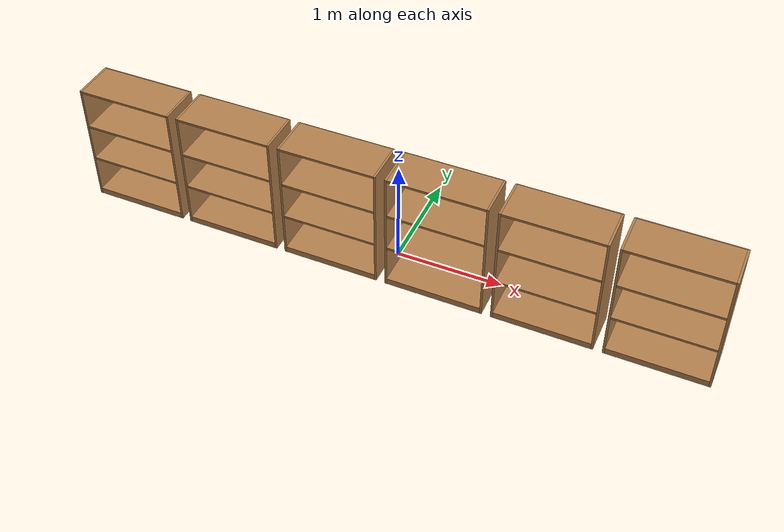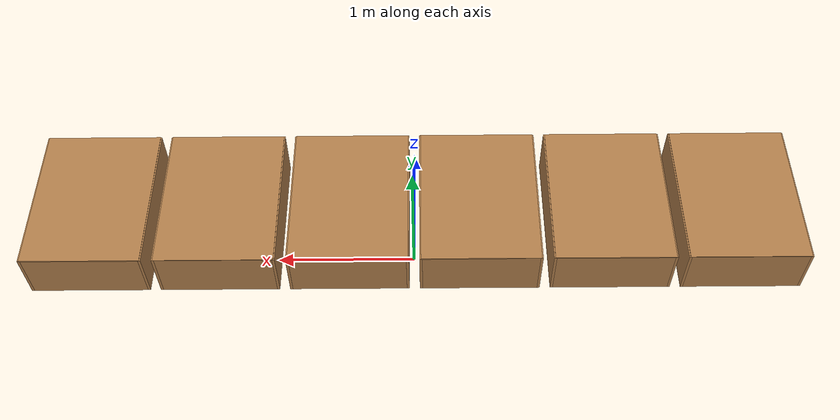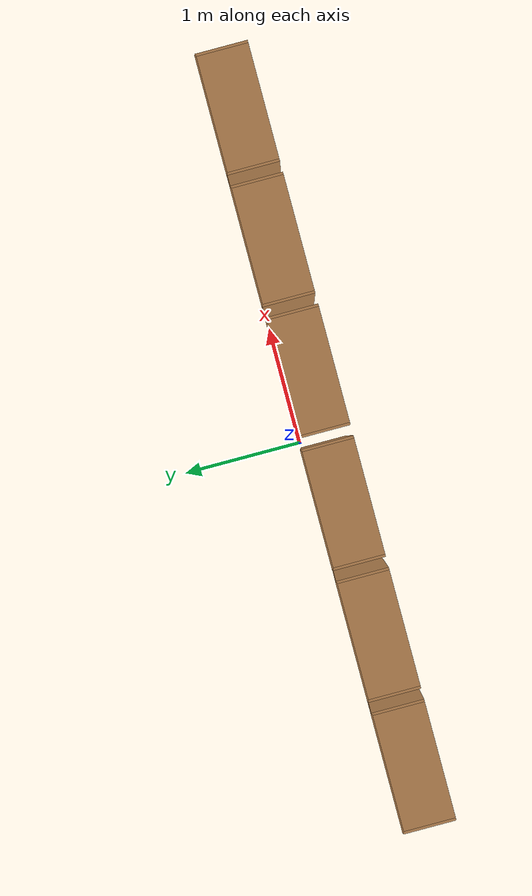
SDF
<?xml version='1.0'?>
<sdf version='1.6'>
  <model name='BookshelfRow'>
    <model name='bookshelf'>
      <static>1</static>
      <link name='link'>
        <inertial>
          <mass>1</mass>
        </inertial>
        <collision name='back'>
          <pose frame=''>0 0.005 0.6 0 -0 0</pose>
          <geometry>
            <box>
              <size>0.9 0.01 1.2</size>
            </box>
          </geometry>
        </collision>
        <visual name='visual1'>
          <pose frame=''>0 0.005 0.6 0 -0 0</pose>
          <geometry>
            <box>
              <size>0.9 0.01 1.2</size>
            </box>
          </geometry>
          <material>
            <script>
              <uri>file://media/materials/scripts/gazebo.material</uri>
              <name>Gazebo/Wood</name>
            </script>
          </material>
        </visual>
        <collision name='left_side'>
          <pose frame=''>0.45 -0.195 0.6 0 -0 0</pose>
          <geometry>
            <box>
              <size>0.02 0.4 1.2</size>
            </box>
          </geometry>
        </collision>
        <visual name='visual2'>
          <pose frame=''>0.45 -0.195 0.6 0 -0 0</pose>
          <geometry>
            <box>
              <size>0.02 0.4 1.2</size>
            </box>
          </geometry>
          <material>
            <script>
              <uri>file://media/materials/scripts/gazebo.material</uri>
              <name>Gazebo/Wood</name>
            </script>
          </material>
        </visual>
        <collision name='right_side'>
          <pose frame=''>-0.45 -0.195 0.6 0 -0 0</pose>
          <geometry>
            <box>
              <size>0.02 0.4 1.2</size>
            </box>
          </geometry>
        </collision>
        <visual name='visual3'>
          <pose frame=''>-0.45 -0.195 0.6 0 -0 0</pose>
          <geometry>
            <box>
              <size>0.02 0.4 1.2</size>
            </box>
          </geometry>
          <material>
            <script>
              <uri>file://media/materials/scripts/gazebo.material</uri>
              <name>Gazebo/Wood</name>
            </script>
          </material>
        </visual>
        <collision name='bottom'>
          <pose frame=''>0 -0.195 0.03 0 -0 0</pose>
          <geometry>
            <box>
              <size>0.88 0.4 0.06</size>
            </box>
          </geometry>
        </collision>
        <visual name='visual4'>
          <pose frame=''>0 -0.195 0.03 0 -0 0</pose>
          <geometry>
            <box>
              <size>0.88 0.4 0.06</size>
            </box>
          </geometry>
          <material>
            <script>
              <uri>file://media/materials/scripts/gazebo.material</uri>
              <name>Gazebo/Wood</name>
            </script>
          </material>
        </visual>
        <collision name='top'>
          <pose frame=''>0 -0.195 1.19 0 -0 0</pose>
          <geometry>
            <box>
              <size>0.88 0.4 0.02</size>
            </box>
          </geometry>
        </collision>
        <visual name='visual5'>
          <pose frame=''>0 -0.195 1.19 0 -0 0</pose>
          <geometry>
            <box>
              <size>0.88 0.4 0.02</size>
            </box>
          </geometry>
          <material>
            <script>
              <uri>file://media/materials/scripts/gazebo.material</uri>
              <name>Gazebo/Wood</name>
            </script>
          </material>
        </visual>
        <collision name='low_shelf'>
          <pose frame=''>0 -0.195 0.43 0 -0 0</pose>
          <geometry>
            <box>
              <size>0.88 0.4 0.02</size>
            </box>
          </geometry>
        </collision>
        <visual name='visual6'>
          <pose frame=''>0 -0.195 0.43 0 -0 0</pose>
          <geometry>
            <box>
              <size>0.88 0.4 0.02</size>
            </box>
          </geometry>
          <material>
            <script>
              <uri>file://media/materials/scripts/gazebo.material</uri>
              <name>Gazebo/Wood</name>
            </script>
          </material>
        </visual>
        <collision name='high_shelf'>
          <pose frame=''>0 -0.195 0.8 0 -0 0</pose>
          <geometry>
            <box>
              <size>0.88 0.4 0.02</size>
            </box>
          </geometry>
        </collision>
        <visual name='visual7'>
          <pose frame=''>0 -0.195 0.8 0 -0 0</pose>
          <geometry>
            <box>
              <size>0.88 0.4 0.02</size>
            </box>
          </geometry>
          <material>
            <script>
              <uri>file://media/materials/scripts/gazebo.material</uri>
              <name>Gazebo/Wood</name>
            </script>
          </material>
        </visual>
      </link>
      <pose frame=''>-2.5 0 0 0 -0 0</pose>
    </model>
    <model name='bookshelf_0'>
      <static>1</static>
      <link name='link'>
        <inertial>
          <mass>1</mass>
        </inertial>
        <collision name='back'>
          <pose frame=''>0 0.005 0.6 0 -0 0</pose>
          <geometry>
            <box>
              <size>0.9 0.01 1.2</size>
            </box>
          </geometry>
        </collision>
        <visual name='visual1'>
          <pose frame=''>0 0.005 0.6 0 -0 0</pose>
          <geometry>
            <box>
              <size>0.9 0.01 1.2</size>
            </box>
          </geometry>
          <material>
            <script>
              <uri>file://media/materials/scripts/gazebo.material</uri>
              <name>Gazebo/Wood</name>
            </script>
          </material>
        </visual>
        <collision name='left_side'>
          <pose frame=''>0.45 -0.195 0.6 0 -0 0</pose>
          <geometry>
            <box>
              <size>0.02 0.4 1.2</size>
            </box>
          </geometry>
        </collision>
        <visual name='visual2'>
          <pose frame=''>0.45 -0.195 0.6 0 -0 0</pose>
          <geometry>
            <box>
              <size>0.02 0.4 1.2</size>
            </box>
          </geometry>
          <material>
            <script>
              <uri>file://media/materials/scripts/gazebo.material</uri>
              <name>Gazebo/Wood</name>
            </script>
          </material>
        </visual>
        <collision name='right_side'>
          <pose frame=''>-0.45 -0.195 0.6 0 -0 0</pose>
          <geometry>
            <box>
              <size>0.02 0.4 1.2</size>
            </box>
          </geometry>
        </collision>
        <visual name='visual3'>
          <pose frame=''>-0.45 -0.195 0.6 0 -0 0</pose>
          <geometry>
            <box>
              <size>0.02 0.4 1.2</size>
            </box>
          </geometry>
          <material>
            <script>
              <uri>file://media/materials/scripts/gazebo.material</uri>
              <name>Gazebo/Wood</name>
            </script>
          </material>
        </visual>
        <collision name='bottom'>
          <pose frame=''>0 -0.195 0.03 0 -0 0</pose>
          <geometry>
            <box>
              <size>0.88 0.4 0.06</size>
            </box>
          </geometry>
        </collision>
        <visual name='visual4'>
          <pose frame=''>0 -0.195 0.03 0 -0 0</pose>
          <geometry>
            <box>
              <size>0.88 0.4 0.06</size>
            </box>
          </geometry>
          <material>
            <script>
              <uri>file://media/materials/scripts/gazebo.material</uri>
              <name>Gazebo/Wood</name>
            </script>
          </material>
        </visual>
        <collision name='top'>
          <pose frame=''>0 -0.195 1.19 0 -0 0</pose>
          <geometry>
            <box>
              <size>0.88 0.4 0.02</size>
            </box>
          </geometry>
        </collision>
        <visual name='visual5'>
          <pose frame=''>0 -0.195 1.19 0 -0 0</pose>
          <geometry>
            <box>
              <size>0.88 0.4 0.02</size>
            </box>
          </geometry>
          <material>
            <script>
              <uri>file://media/materials/scripts/gazebo.material</uri>
              <name>Gazebo/Wood</name>
            </script>
          </material>
        </visual>
        <collision name='low_shelf'>
          <pose frame=''>0 -0.195 0.43 0 -0 0</pose>
          <geometry>
            <box>
              <size>0.88 0.4 0.02</size>
            </box>
          </geometry>
        </collision>
        <visual name='visual6'>
          <pose frame=''>0 -0.195 0.43 0 -0 0</pose>
          <geometry>
            <box>
              <size>0.88 0.4 0.02</size>
            </box>
          </geometry>
          <material>
            <script>
              <uri>file://media/materials/scripts/gazebo.material</uri>
              <name>Gazebo/Wood</name>
            </script>
          </material>
        </visual>
        <collision name='high_shelf'>
          <pose frame=''>0 -0.195 0.8 0 -0 0</pose>
          <geometry>
            <box>
              <size>0.88 0.4 0.02</size>
            </box>
          </geometry>
        </collision>
        <visual name='visual7'>
          <pose frame=''>0 -0.195 0.8 0 -0 0</pose>
          <geometry>
            <box>
              <size>0.88 0.4 0.02</size>
            </box>
          </geometry>
          <material>
            <script>
              <uri>file://media/materials/scripts/gazebo.material</uri>
              <name>Gazebo/Wood</name>
            </script>
          </material>
        </visual>
      </link>
      <pose frame=''>-1.5 0 0 0 -0 0</pose>
    </model>
    <model name='bookshelf_1'>
      <static>1</static>
      <link name='link'>
        <inertial>
          <mass>1</mass>
        </inertial>
        <collision name='back'>
          <pose frame=''>0 0.005 0.6 0 -0 0</pose>
          <geometry>
            <box>
              <size>0.9 0.01 1.2</size>
            </box>
          </geometry>
        </collision>
        <visual name='visual1'>
          <pose frame=''>0 0.005 0.6 0 -0 0</pose>
          <geometry>
            <box>
              <size>0.9 0.01 1.2</size>
            </box>
          </geometry>
          <material>
            <script>
              <uri>file://media/materials/scripts/gazebo.material</uri>
              <name>Gazebo/Wood</name>
            </script>
          </material>
        </visual>
        <collision name='left_side'>
          <pose frame=''>0.45 -0.195 0.6 0 -0 0</pose>
          <geometry>
            <box>
              <size>0.02 0.4 1.2</size>
            </box>
          </geometry>
        </collision>
        <visual name='visual2'>
          <pose frame=''>0.45 -0.195 0.6 0 -0 0</pose>
          <geometry>
            <box>
              <size>0.02 0.4 1.2</size>
            </box>
          </geometry>
          <material>
            <script>
              <uri>file://media/materials/scripts/gazebo.material</uri>
              <name>Gazebo/Wood</name>
            </script>
          </material>
        </visual>
        <collision name='right_side'>
          <pose frame=''>-0.45 -0.195 0.6 0 -0 0</pose>
          <geometry>
            <box>
              <size>0.02 0.4 1.2</size>
            </box>
          </geometry>
        </collision>
        <visual name='visual3'>
          <pose frame=''>-0.45 -0.195 0.6 0 -0 0</pose>
          <geometry>
            <box>
              <size>0.02 0.4 1.2</size>
            </box>
          </geometry>
          <material>
            <script>
              <uri>file://media/materials/scripts/gazebo.material</uri>
              <name>Gazebo/Wood</name>
            </script>
          </material>
        </visual>
        <collision name='bottom'>
          <pose frame=''>0 -0.195 0.03 0 -0 0</pose>
          <geometry>
            <box>
              <size>0.88 0.4 0.06</size>
            </box>
          </geometry>
        </collision>
        <visual name='visual4'>
          <pose frame=''>0 -0.195 0.03 0 -0 0</pose>
          <geometry>
            <box>
              <size>0.88 0.4 0.06</size>
            </box>
          </geometry>
          <material>
            <script>
              <uri>file://media/materials/scripts/gazebo.material</uri>
              <name>Gazebo/Wood</name>
            </script>
          </material>
        </visual>
        <collision name='top'>
          <pose frame=''>0 -0.195 1.19 0 -0 0</pose>
          <geometry>
            <box>
              <size>0.88 0.4 0.02</size>
            </box>
          </geometry>
        </collision>
        <visual name='visual5'>
          <pose frame=''>0 -0.195 1.19 0 -0 0</pose>
          <geometry>
            <box>
              <size>0.88 0.4 0.02</size>
            </box>
          </geometry>
          <material>
            <script>
              <uri>file://media/materials/scripts/gazebo.material</uri>
              <name>Gazebo/Wood</name>
            </script>
          </material>
        </visual>
        <collision name='low_shelf'>
          <pose frame=''>0 -0.195 0.43 0 -0 0</pose>
          <geometry>
            <box>
              <size>0.88 0.4 0.02</size>
            </box>
          </geometry>
        </collision>
        <visual name='visual6'>
          <pose frame=''>0 -0.195 0.43 0 -0 0</pose>
          <geometry>
            <box>
              <size>0.88 0.4 0.02</size>
            </box>
          </geometry>
          <material>
            <script>
              <uri>file://media/materials/scripts/gazebo.material</uri>
              <name>Gazebo/Wood</name>
            </script>
          </material>
        </visual>
        <collision name='high_shelf'>
          <pose frame=''>0 -0.195 0.8 0 -0 0</pose>
          <geometry>
            <box>
              <size>0.88 0.4 0.02</size>
            </box>
          </geometry>
        </collision>
        <visual name='visual7'>
          <pose frame=''>0 -0.195 0.8 0 -0 0</pose>
          <geometry>
            <box>
              <size>0.88 0.4 0.02</size>
            </box>
          </geometry>
          <material>
            <script>
              <uri>file://media/materials/scripts/gazebo.material</uri>
              <name>Gazebo/Wood</name>
            </script>
          </material>
        </visual>
      </link>
      <pose frame=''>-0.5 0 0 0 -0 0</pose>
    </model>
    <model name='bookshelf_2'>
      <static>1</static>
      <link name='link'>
        <inertial>
          <mass>1</mass>
        </inertial>
        <collision name='back'>
          <pose frame=''>0 0.005 0.6 0 -0 0</pose>
          <geometry>
            <box>
              <size>0.9 0.01 1.2</size>
            </box>
          </geometry>
        </collision>
        <visual name='visual1'>
          <pose frame=''>0 0.005 0.6 0 -0 0</pose>
          <geometry>
            <box>
              <size>0.9 0.01 1.2</size>
            </box>
          </geometry>
          <material>
            <script>
              <uri>file://media/materials/scripts/gazebo.material</uri>
              <name>Gazebo/Wood</name>
            </script>
          </material>
        </visual>
        <collision name='left_side'>
          <pose frame=''>0.45 -0.195 0.6 0 -0 0</pose>
          <geometry>
            <box>
              <size>0.02 0.4 1.2</size>
            </box>
          </geometry>
        </collision>
        <visual name='visual2'>
          <pose frame=''>0.45 -0.195 0.6 0 -0 0</pose>
          <geometry>
            <box>
              <size>0.02 0.4 1.2</size>
            </box>
          </geometry>
          <material>
            <script>
              <uri>file://media/materials/scripts/gazebo.material</uri>
              <name>Gazebo/Wood</name>
            </script>
          </material>
        </visual>
        <collision name='right_side'>
          <pose frame=''>-0.45 -0.195 0.6 0 -0 0</pose>
          <geometry>
            <box>
              <size>0.02 0.4 1.2</size>
            </box>
          </geometry>
        </collision>
        <visual name='visual3'>
          <pose frame=''>-0.45 -0.195 0.6 0 -0 0</pose>
          <geometry>
            <box>
              <size>0.02 0.4 1.2</size>
            </box>
          </geometry>
          <material>
            <script>
              <uri>file://media/materials/scripts/gazebo.material</uri>
              <name>Gazebo/Wood</name>
            </script>
          </material>
        </visual>
        <collision name='bottom'>
          <pose frame=''>0 -0.195 0.03 0 -0 0</pose>
          <geometry>
            <box>
              <size>0.88 0.4 0.06</size>
            </box>
          </geometry>
        </collision>
        <visual name='visual4'>
          <pose frame=''>0 -0.195 0.03 0 -0 0</pose>
          <geometry>
            <box>
              <size>0.88 0.4 0.06</size>
            </box>
          </geometry>
          <material>
            <script>
              <uri>file://media/materials/scripts/gazebo.material</uri>
              <name>Gazebo/Wood</name>
            </script>
          </material>
        </visual>
        <collision name='top'>
          <pose frame=''>0 -0.195 1.19 0 -0 0</pose>
          <geometry>
            <box>
              <size>0.88 0.4 0.02</size>
            </box>
          </geometry>
        </collision>
        <visual name='visual5'>
          <pose frame=''>0 -0.195 1.19 0 -0 0</pose>
          <geometry>
            <box>
              <size>0.88 0.4 0.02</size>
            </box>
          </geometry>
          <material>
            <script>
              <uri>file://media/materials/scripts/gazebo.material</uri>
              <name>Gazebo/Wood</name>
            </script>
          </material>
        </visual>
        <collision name='low_shelf'>
          <pose frame=''>0 -0.195 0.43 0 -0 0</pose>
          <geometry>
            <box>
              <size>0.88 0.4 0.02</size>
            </box>
          </geometry>
        </collision>
        <visual name='visual6'>
          <pose frame=''>0 -0.195 0.43 0 -0 0</pose>
          <geometry>
            <box>
              <size>0.88 0.4 0.02</size>
            </box>
          </geometry>
          <material>
            <script>
              <uri>file://media/materials/scripts/gazebo.material</uri>
              <name>Gazebo/Wood</name>
            </script>
          </material>
        </visual>
        <collision name='high_shelf'>
          <pose frame=''>0 -0.195 0.8 0 -0 0</pose>
          <geometry>
            <box>
              <size>0.88 0.4 0.02</size>
            </box>
          </geometry>
        </collision>
        <visual name='visual7'>
          <pose frame=''>0 -0.195 0.8 0 -0 0</pose>
          <geometry>
            <box>
              <size>0.88 0.4 0.02</size>
            </box>
          </geometry>
          <material>
            <script>
              <uri>file://media/materials/scripts/gazebo.material</uri>
              <name>Gazebo/Wood</name>
            </script>
          </material>
        </visual>
      </link>
      <pose frame=''>0.5 0 0 0 -0 0</pose>
    </model>
    <model name='bookshelf_3'>
      <static>1</static>
      <link name='link'>
        <inertial>
          <mass>1</mass>
        </inertial>
        <collision name='back'>
          <pose frame=''>0 0.005 0.6 0 -0 0</pose>
          <geometry>
            <box>
              <size>0.9 0.01 1.2</size>
            </box>
          </geometry>
        </collision>
        <visual name='visual1'>
          <pose frame=''>0 0.005 0.6 0 -0 0</pose>
          <geometry>
            <box>
              <size>0.9 0.01 1.2</size>
            </box>
          </geometry>
          <material>
            <script>
              <uri>file://media/materials/scripts/gazebo.material</uri>
              <name>Gazebo/Wood</name>
            </script>
          </material>
        </visual>
        <collision name='left_side'>
          <pose frame=''>0.45 -0.195 0.6 0 -0 0</pose>
          <geometry>
            <box>
              <size>0.02 0.4 1.2</size>
            </box>
          </geometry>
        </collision>
        <visual name='visual2'>
          <pose frame=''>0.45 -0.195 0.6 0 -0 0</pose>
          <geometry>
            <box>
              <size>0.02 0.4 1.2</size>
            </box>
          </geometry>
          <material>
            <script>
              <uri>file://media/materials/scripts/gazebo.material</uri>
              <name>Gazebo/Wood</name>
            </script>
          </material>
        </visual>
        <collision name='right_side'>
          <pose frame=''>-0.45 -0.195 0.6 0 -0 0</pose>
          <geometry>
            <box>
              <size>0.02 0.4 1.2</size>
            </box>
          </geometry>
        </collision>
        <visual name='visual3'>
          <pose frame=''>-0.45 -0.195 0.6 0 -0 0</pose>
          <geometry>
            <box>
              <size>0.02 0.4 1.2</size>
            </box>
          </geometry>
          <material>
            <script>
              <uri>file://media/materials/scripts/gazebo.material</uri>
              <name>Gazebo/Wood</name>
            </script>
          </material>
        </visual>
        <collision name='bottom'>
          <pose frame=''>0 -0.195 0.03 0 -0 0</pose>
          <geometry>
            <box>
              <size>0.88 0.4 0.06</size>
            </box>
          </geometry>
        </collision>
        <visual name='visual4'>
          <pose frame=''>0 -0.195 0.03 0 -0 0</pose>
          <geometry>
            <box>
              <size>0.88 0.4 0.06</size>
            </box>
          </geometry>
          <material>
            <script>
              <uri>file://media/materials/scripts/gazebo.material</uri>
              <name>Gazebo/Wood</name>
            </script>
          </material>
        </visual>
        <collision name='top'>
          <pose frame=''>0 -0.195 1.19 0 -0 0</pose>
          <geometry>
            <box>
              <size>0.88 0.4 0.02</size>
            </box>
          </geometry>
        </collision>
        <visual name='visual5'>
          <pose frame=''>0 -0.195 1.19 0 -0 0</pose>
          <geometry>
            <box>
              <size>0.88 0.4 0.02</size>
            </box>
          </geometry>
          <material>
            <script>
              <uri>file://media/materials/scripts/gazebo.material</uri>
              <name>Gazebo/Wood</name>
            </script>
          </material>
        </visual>
        <collision name='low_shelf'>
          <pose frame=''>0 -0.195 0.43 0 -0 0</pose>
          <geometry>
            <box>
              <size>0.88 0.4 0.02</size>
            </box>
          </geometry>
        </collision>
        <visual name='visual6'>
          <pose frame=''>0 -0.195 0.43 0 -0 0</pose>
          <geometry>
            <box>
              <size>0.88 0.4 0.02</size>
            </box>
          </geometry>
          <material>
            <script>
              <uri>file://media/materials/scripts/gazebo.material</uri>
              <name>Gazebo/Wood</name>
            </script>
          </material>
        </visual>
        <collision name='high_shelf'>
          <pose frame=''>0 -0.195 0.8 0 -0 0</pose>
          <geometry>
            <box>
              <size>0.88 0.4 0.02</size>
            </box>
          </geometry>
        </collision>
        <visual name='visual7'>
          <pose frame=''>0 -0.195 0.8 0 -0 0</pose>
          <geometry>
            <box>
              <size>0.88 0.4 0.02</size>
            </box>
          </geometry>
          <material>
            <script>
              <uri>file://media/materials/scripts/gazebo.material</uri>
              <name>Gazebo/Wood</name>
            </script>
          </material>
        </visual>
      </link>
      <pose frame=''>1.5 0 0 0 -0 0</pose>
    </model>
    <model name='bookshelf_4'>
      <static>1</static>
      <link name='link'>
        <inertial>
          <mass>1</mass>
        </inertial>
        <collision name='back'>
          <pose frame=''>0 0.005 0.6 0 -0 0</pose>
          <geometry>
            <box>
              <size>0.9 0.01 1.2</size>
            </box>
          </geometry>
        </collision>
        <visual name='visual1'>
          <pose frame=''>0 0.005 0.6 0 -0 0</pose>
          <geometry>
            <box>
              <size>0.9 0.01 1.2</size>
            </box>
          </geometry>
          <material>
            <script>
              <uri>file://media/materials/scripts/gazebo.material</uri>
              <name>Gazebo/Wood</name>
            </script>
          </material>
        </visual>
        <collision name='left_side'>
          <pose frame=''>0.45 -0.195 0.6 0 -0 0</pose>
          <geometry>
            <box>
              <size>0.02 0.4 1.2</size>
            </box>
          </geometry>
        </collision>
        <visual name='visual2'>
          <pose frame=''>0.45 -0.195 0.6 0 -0 0</pose>
          <geometry>
            <box>
              <size>0.02 0.4 1.2</size>
            </box>
          </geometry>
          <material>
            <script>
              <uri>file://media/materials/scripts/gazebo.material</uri>
              <name>Gazebo/Wood</name>
            </script>
          </material>
        </visual>
        <collision name='right_side'>
          <pose frame=''>-0.45 -0.195 0.6 0 -0 0</pose>
          <geometry>
            <box>
              <size>0.02 0.4 1.2</size>
            </box>
          </geometry>
        </collision>
        <visual name='visual3'>
          <pose frame=''>-0.45 -0.195 0.6 0 -0 0</pose>
          <geometry>
            <box>
              <size>0.02 0.4 1.2</size>
            </box>
          </geometry>
          <material>
            <script>
              <uri>file://media/materials/scripts/gazebo.material</uri>
              <name>Gazebo/Wood</name>
            </script>
          </material>
        </visual>
        <collision name='bottom'>
          <pose frame=''>0 -0.195 0.03 0 -0 0</pose>
          <geometry>
            <box>
              <size>0.88 0.4 0.06</size>
            </box>
          </geometry>
        </collision>
        <visual name='visual4'>
          <pose frame=''>0 -0.195 0.03 0 -0 0</pose>
          <geometry>
            <box>
              <size>0.88 0.4 0.06</size>
            </box>
          </geometry>
          <material>
            <script>
              <uri>file://media/materials/scripts/gazebo.material</uri>
              <name>Gazebo/Wood</name>
            </script>
          </material>
        </visual>
        <collision name='top'>
          <pose frame=''>0 -0.195 1.19 0 -0 0</pose>
          <geometry>
            <box>
              <size>0.88 0.4 0.02</size>
            </box>
          </geometry>
        </collision>
        <visual name='visual5'>
          <pose frame=''>0 -0.195 1.19 0 -0 0</pose>
          <geometry>
            <box>
              <size>0.88 0.4 0.02</size>
            </box>
          </geometry>
          <material>
            <script>
              <uri>file://media/materials/scripts/gazebo.material</uri>
              <name>Gazebo/Wood</name>
            </script>
          </material>
        </visual>
        <collision name='low_shelf'>
          <pose frame=''>0 -0.195 0.43 0 -0 0</pose>
          <geometry>
            <box>
              <size>0.88 0.4 0.02</size>
            </box>
          </geometry>
        </collision>
        <visual name='visual6'>
          <pose frame=''>0 -0.195 0.43 0 -0 0</pose>
          <geometry>
            <box>
              <size>0.88 0.4 0.02</size>
            </box>
          </geometry>
          <material>
            <script>
              <uri>file://media/materials/scripts/gazebo.material</uri>
              <name>Gazebo/Wood</name>
            </script>
          </material>
        </visual>
        <collision name='high_shelf'>
          <pose frame=''>0 -0.195 0.8 0 -0 0</pose>
          <geometry>
            <box>
              <size>0.88 0.4 0.02</size>
            </box>
          </geometry>
        </collision>
        <visual name='visual7'>
          <pose frame=''>0 -0.195 0.8 0 -0 0</pose>
          <geometry>
            <box>
              <size>0.88 0.4 0.02</size>
            </box>
          </geometry>
          <material>
            <script>
              <uri>file://media/materials/scripts/gazebo.material</uri>
              <name>Gazebo/Wood</name>
            </script>
          </material>
        </visual>
      </link>
      <pose frame=''>2.5 0 0 0 -0 0</pose>
    </model>
    <static>0</static>
    <allow_auto_disable>1</allow_auto_disable>
  </model>
</sdf>
